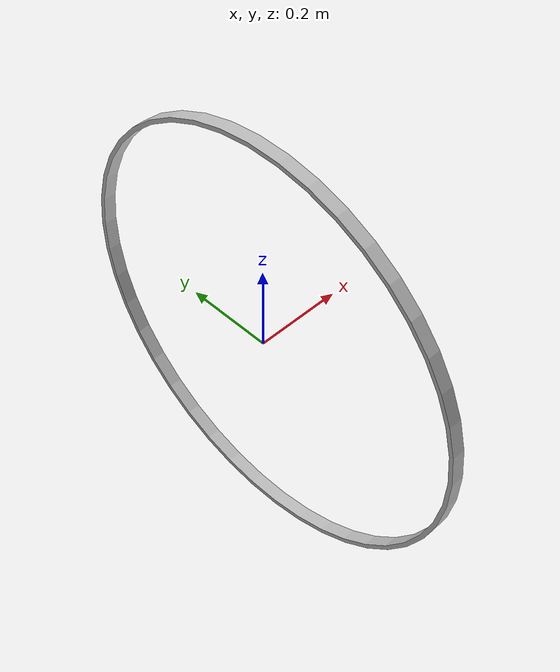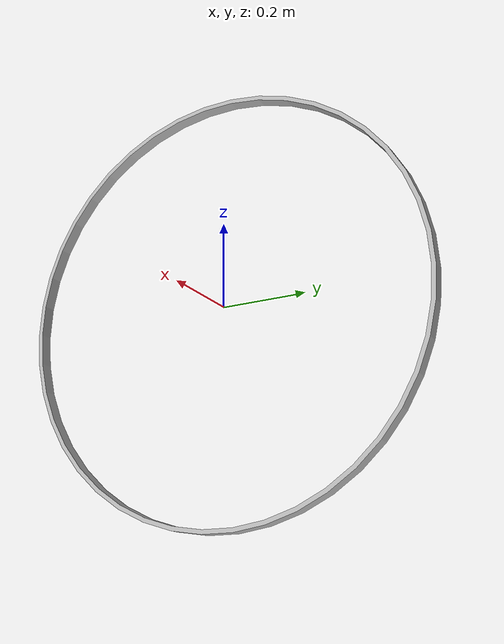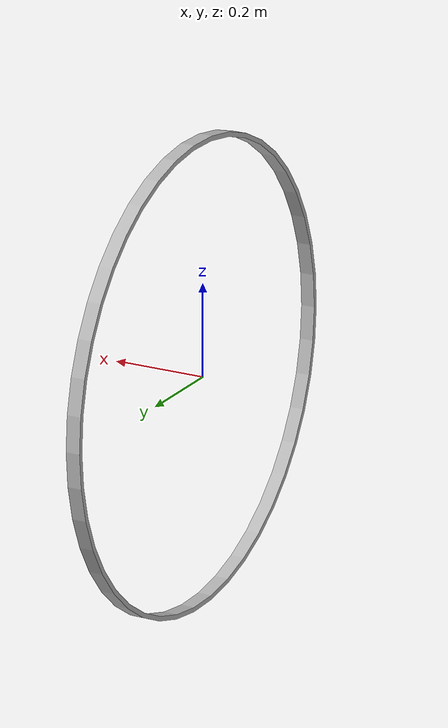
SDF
<?xml version="1.0" ?>
<sdf version="1.6">
    <model name="ring_model">
        <static>false</static>
        <link name="ring_link">
            <inertial>
                <mass>0.1</mass>
                <inertia>
                    <ixx>0.0001</ixx>
                    <ixy>0</ixy>
                    <ixz>0</ixz>
                    <iyy>0.0001</iyy>
                    <iyz>0</iyz>
                    <izz>0.0001</izz>
                </inertia>
            </inertial>
            <visual name="ring_visual">
                <geometry>
                    <mesh>
                        <uri>ring.obj</uri>
                        <scale>1 1 1</scale>
                    </mesh>
                </geometry>
            </visual>
            <collision name="ring_collision">
                <geometry>
                    <mesh>
                        <uri>ring.obj</uri>
                        <scale>1 1 1</scale>
                    </mesh>
                </geometry>
            </collision>
        </link>
    </model>
</sdf>
